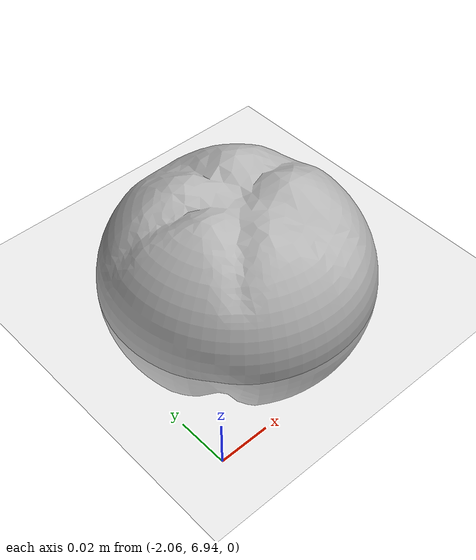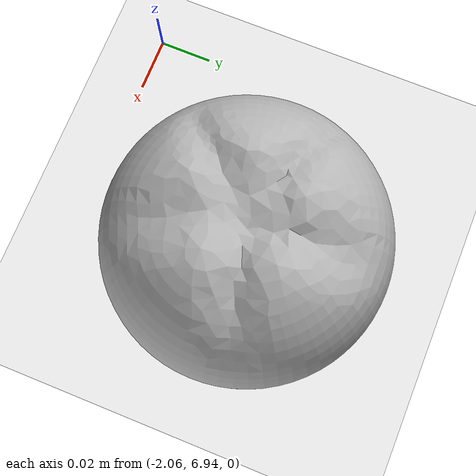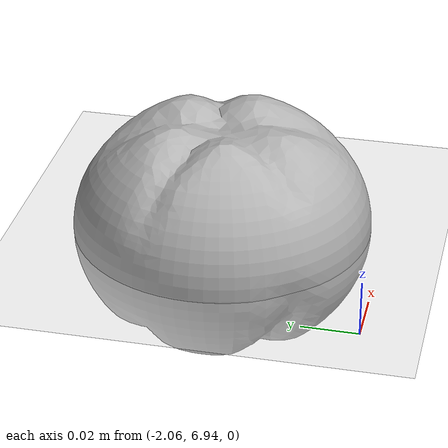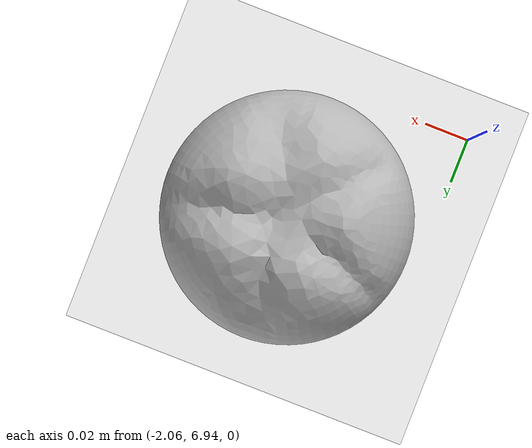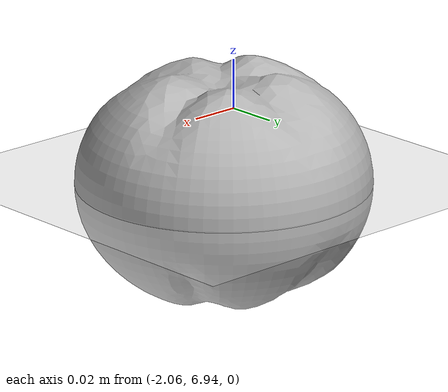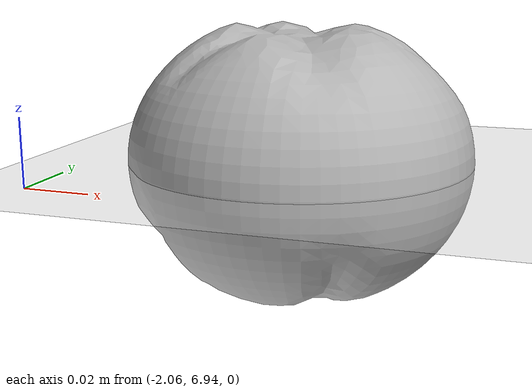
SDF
<?xml version="1.0" ?>
<sdf version="1.6">
  <world name="test_world">
    <include>
      <uri>model://ground_plane</uri>
    </include>
    <include>
      <uri>model://sun</uri>
    </include>
    <include>
      <uri>model://tomato</uri>
      <name>gas_station</name>
      <pose>-2.0 7.0 0 0 0 0</pose>
    </include>
  </world>
</sdf>

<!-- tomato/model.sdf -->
<sdf version="1.6">
    <model name="tomato">
      <link name="tomato_link">
        <visual name="visual">
          <geometry>
            <mesh><uri>model://tomato/meshes/tomato.obj</uri></mesh>
          </geometry>
        </visual>
        <collision name="collision">
          <geometry>
            <mesh><uri>model://tomato/meshes/tomato.obj</uri></mesh>
          </geometry>
        </collision>
      </link>
    </model>
</sdf>
